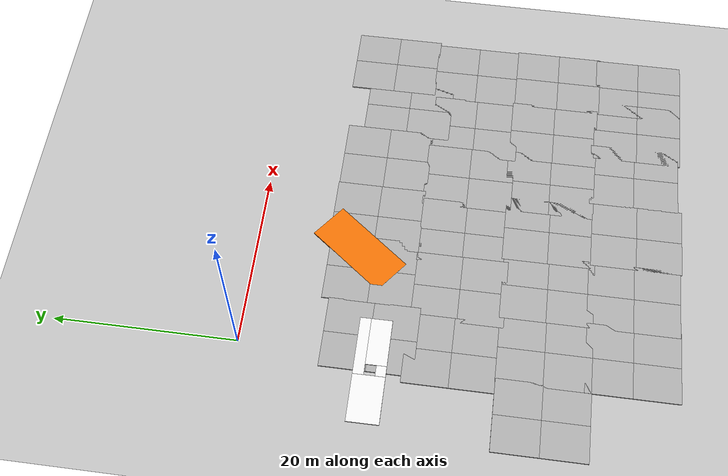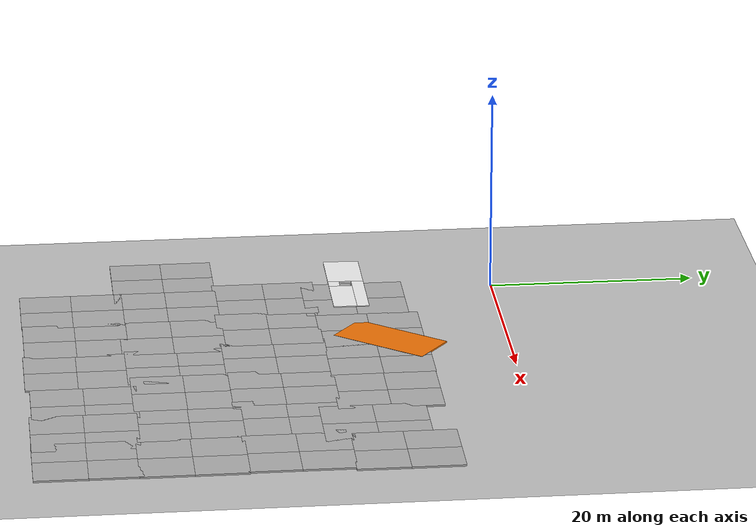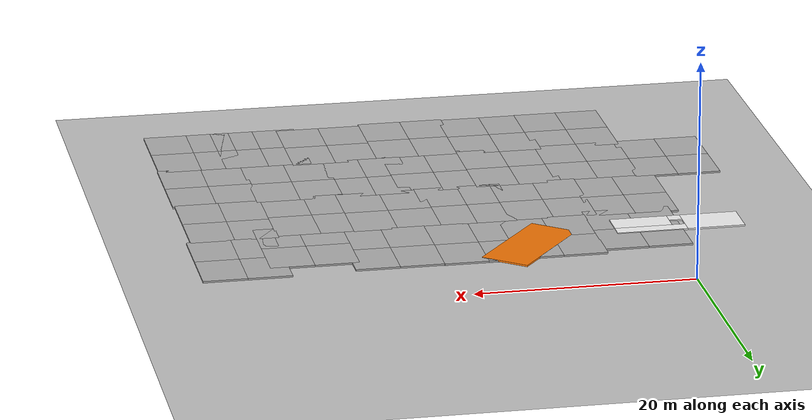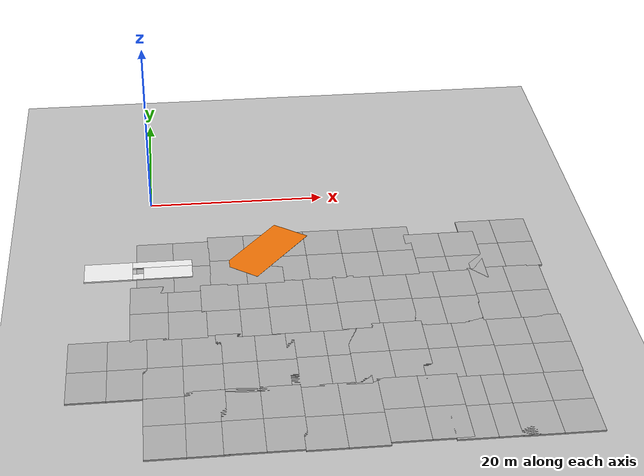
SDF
<sdf version="1.5">
 <world name="default">
  <model name="ground_plane">
   <static>1</static>
   <link name="link">
    <collision name="collision">
     <geometry><plane><normal>0 0 1</normal><size>100 100</size></plane></geometry>
     <surface><friction><ode><mu>100</mu><mu2>50</mu2></ode></friction></surface>
    </collision>
    <visual name="visual">
     <cast_shadows>0</cast_shadows>
     <geometry><plane><normal>0 0 1</normal><size>100 100</size></plane></geometry>
     <material>
      <script><uri>file://media/materials/scripts/gazebo.material</uri><name>Gazebo/Grey</name></script>
     </material>
    </visual>
   </link>
  </model>
  <model name="mud_box_6">
   <static>1</static>
   <link name="link">
    <collision name="collision"><geometry><box><size>8 10 0.2</size></box></geometry></collision>
    <visual name="visual_1">
     <pose>-2 2.5 0 0 -0 0</pose>
     <cast_shadows>0</cast_shadows>
     <geometry><box><size>4 5 0.2</size></box></geometry>
     <material>
      <script>
       <uri>model://mud_box/materials/scripts</uri>
       <uri>model://mud_box/materials/textures</uri>
       <name>vrc/mud</name>
      </script>
     </material>
    </visual>
    <visual name="visual_2">
     <pose>2 2.5 0 0 -0 0</pose>
     <cast_shadows>0</cast_shadows>
     <geometry><box><size>4 5 0.2</size></box></geometry>
     <material>
      <script>
       <uri>model://mud_box/materials/scripts</uri>
       <uri>model://mud_box/materials/textures</uri>
       <name>vrc/mud</name>
      </script>
     </material>
    </visual>
    <visual name="visual_3">
     <pose>2 -2.5 0 0 -0 0</pose>
     <cast_shadows>0</cast_shadows>
     <geometry><box><size>4 5 0.2</size></box></geometry>
     <material>
      <script>
       <uri>model://mud_box/materials/scripts</uri>
       <uri>model://mud_box/materials/textures</uri>
       <name>vrc/mud</name>
      </script>
     </material>
    </visual>
    <visual name="visual_4">
     <pose>-2 -2.5 0 0 -0 0</pose>
     <cast_shadows>0</cast_shadows>
     <geometry><box><size>4 5 0.2</size></box></geometry>
     <material>
      <script>
       <uri>model://mud_box/materials/scripts</uri>
       <uri>model://mud_box/materials/textures</uri>
       <name>vrc/mud</name>
      </script>
     </material>
    </visual>
   </link>
   <pose>10.2281 -13.0017 0 0 -0 0</pose>
  </model>
  <model name="mud_box_7">
   <static>1</static>
   <link name="link">
    <collision name="collision"><geometry><box><size>8 10 0.2</size></box></geometry></collision>
    <visual name="visual_1">
     <pose>-2 2.5 0 0 -0 0</pose>
     <cast_shadows>0</cast_shadows>
     <geometry><box><size>4 5 0.2</size></box></geometry>
     <material>
      <script>
       <uri>model://mud_box/materials/scripts</uri>
       <uri>model://mud_box/materials/textures</uri>
       <name>vrc/mud</name>
      </script>
     </material>
    </visual>
    <visual name="visual_2">
     <pose>2 2.5 0 0 -0 0</pose>
     <cast_shadows>0</cast_shadows>
     <geometry><box><size>4 5 0.2</size></box></geometry>
     <material>
      <script>
       <uri>model://mud_box/materials/scripts</uri>
       <uri>model://mud_box/materials/textures</uri>
       <name>vrc/mud</name>
      </script>
     </material>
    </visual>
    <visual name="visual_3">
     <pose>2 -2.5 0 0 -0 0</pose>
     <cast_shadows>0</cast_shadows>
     <geometry><box><size>4 5 0.2</size></box></geometry>
     <material>
      <script>
       <uri>model://mud_box/materials/scripts</uri>
       <uri>model://mud_box/materials/textures</uri>
       <name>vrc/mud</name>
      </script>
     </material>
    </visual>
    <visual name="visual_4">
     <pose>-2 -2.5 0 0 -0 0</pose>
     <cast_shadows>0</cast_shadows>
     <geometry><box><size>4 5 0.2</size></box></geometry>
     <material>
      <script>
       <uri>model://mud_box/materials/scripts</uri>
       <uri>model://mud_box/materials/textures</uri>
       <name>vrc/mud</name>
      </script>
     </material>
    </visual>
   </link>
   <pose>2.3022 -13.8279 0 0 -0 0</pose>
  </model>
  <model name="window2">
   <pose>-1.52133 -12.523 0.093793 1.55967 -0 0</pose>
   <link name="Wall_0">
    <visual name="Wall_0_Visual_0">
     <pose>-3.2425 0 1.75 0 -0 0</pose>
     <geometry><box><size>5.265 0.15 3.5</size></box></geometry>
     <material>
      <script>
       <uri>model://window_door/materials/scripts</uri>
       <uri>model://window_door/materials/textures</uri>
       <name>Wall/NiceWall</name>
      </script>
      <ambient>1 1 1 1</ambient>
     </material>
    </visual>
    <collision name="Wall_0_Collision_0">
     <geometry><box><size>5.265 0.15 3.5</size></box></geometry>
     <pose>-3.2425 0 1.75 0 -0 0</pose>
    </collision>
    <visual name="Wall_0_Visual_1">
     <pose>2.6325 0 0.6 0 -0 0</pose>
     <geometry><box><size>6.485 0.15 1.2</size></box></geometry>
     <material>
      <script>
       <uri>model://window_door/materials/scripts</uri>
       <uri>model://window_door/materials/textures</uri>
       <name>Wall/NiceWall</name>
      </script>
      <ambient>1 1 1 1</ambient>
     </material>
    </visual>
    <collision name="Wall_0_Collision_1">
     <geometry><box><size>6.485 0.15 1.2</size></box></geometry>
     <pose>2.6325 0 0.6 0 -0 0</pose>
    </collision>
    <visual name="Wall_0_Visual_2">
     <pose>3.2325 0 2.35 0 -0 0</pose>
     <geometry><box><size>5.285 0.15 2.3</size></box></geometry>
     <material>
      <script>
       <uri>model://window_door/materials/scripts</uri>
       <uri>model://window_door/materials/textures</uri>
       <name>Wall/NiceWall</name>
      </script>
      <ambient>1 1 1 1</ambient>
     </material>
    </visual>
    <collision name="Wall_0_Collision_2">
     <geometry><box><size>5.285 0.15 2.3</size></box></geometry>
     <pose>3.2325 0 2.35 0 -0 0</pose>
    </collision>
    <visual name="Wall_0_Visual_3">
     <pose>-0.01 0 2.95 0 -0 0</pose>
     <geometry><box><size>1.2 0.15 1.1</size></box></geometry>
     <material>
      <script>
       <uri>model://window_door/materials/scripts</uri>
       <uri>model://window_door/materials/textures</uri>
       <name>Wall/NiceWall</name>
      </script>
      <ambient>1 1 1 1</ambient>
     </material>
    </visual>
    <collision name="Wall_0_Collision_3">
     <geometry><box><size>1.2 0.15 1.1</size></box></geometry>
     <pose>-0.01 0 2.95 0 -0 0</pose>
    </collision>
   </link>
   <static>1</static>
  </model>
  <model name="wall_2">
   <pose>14.4557 -12.7036 0.049201 2.47818 -1.56676 -3.14083</pose>
   <link name="Wall_0">
    <collision name="Wall_0_Collision">
     <geometry><box><size>10 0.15 4.5</size></box></geometry>
     <pose>0 0 2.25 0 -0 0</pose>
    </collision>
    <visual name="Wall_0_Visual">
     <pose>0 0 2.25 0 -0 0</pose>
     <geometry><box><size>10 0.15 4.5</size></box></geometry>
     <material>
      <script>
       <uri>model://wall/materials/scripts</uri>
       <uri>model://wall/materials/textures</uri>
       <name>Wall/NiceWall</name>
      </script>
      <ambient>0.996078 0.47451 0.0196078 1</ambient>
     </material>
    </visual>
    <pose>0 -0 0 0 0 -1.5708</pose>
   </link>
   <static>1</static>
  </model>
  <model name="mud_box_19">
   <static>1</static>
   <link name="link">
    <collision name="collision"><geometry><box><size>8 10 0.2</size></box></geometry></collision>
    <visual name="visual_1">
     <pose>-2 2.5 0 0 -0 0</pose>
     <cast_shadows>0</cast_shadows>
     <geometry><box><size>4 5 0.2</size></box></geometry>
     <material>
      <script>
       <uri>model://mud_box/materials/scripts</uri>
       <uri>model://mud_box/materials/textures</uri>
       <name>vrc/mud</name>
      </script>
     </material>
    </visual>
    <visual name="visual_2">
     <pose>2 2.5 0 0 -0 0</pose>
     <cast_shadows>0</cast_shadows>
     <geometry><box><size>4 5 0.2</size></box></geometry>
     <material>
      <script>
       <uri>model://mud_box/materials/scripts</uri>
       <uri>model://mud_box/materials/textures</uri>
       <name>vrc/mud</name>
      </script>
     </material>
    </visual>
    <visual name="visual_3">
     <pose>2 -2.5 0 0 -0 0</pose>
     <cast_shadows>0</cast_shadows>
     <geometry><box><size>4 5 0.2</size></box></geometry>
     <material>
      <script>
       <uri>model://mud_box/materials/scripts</uri>
       <uri>model://mud_box/materials/textures</uri>
       <name>vrc/mud</name>
      </script>
     </material>
    </visual>
    <visual name="visual_4">
     <pose>-2 -2.5 0 0 -0 0</pose>
     <cast_shadows>0</cast_shadows>
     <geometry><box><size>4 5 0.2</size></box></geometry>
     <material>
      <script>
       <uri>model://mud_box/materials/scripts</uri>
       <uri>model://mud_box/materials/textures</uri>
       <name>vrc/mud</name>
      </script>
     </material>
    </visual>
   </link>
   <pose>17.056 -12.7839 0 0 -0 0</pose>
  </model>
  <model name="mud_box_33">
   <static>1</static>
   <link name="link">
    <collision name="collision"><geometry><box><size>8 10 0.2</size></box></geometry></collision>
    <visual name="visual_1">
     <pose>-2 2.5 0 0 -0 0</pose>
     <cast_shadows>0</cast_shadows>
     <geometry><box><size>4 5 0.2</size></box></geometry>
     <material>
      <script>
       <uri>model://mud_box/materials/scripts</uri>
       <uri>model://mud_box/materials/textures</uri>
       <name>vrc/mud</name>
      </script>
     </material>
    </visual>
    <visual name="visual_2">
     <pose>2 2.5 0 0 -0 0</pose>
     <cast_shadows>0</cast_shadows>
     <geometry><box><size>4 5 0.2</size></box></geometry>
     <material>
      <script>
       <uri>model://mud_box/materials/scripts</uri>
       <uri>model://mud_box/materials/textures</uri>
       <name>vrc/mud</name>
      </script>
     </material>
    </visual>
    <visual name="visual_3">
     <pose>2 -2.5 0 0 -0 0</pose>
     <cast_shadows>0</cast_shadows>
     <geometry><box><size>4 5 0.2</size></box></geometry>
     <material>
      <script>
       <uri>model://mud_box/materials/scripts</uri>
       <uri>model://mud_box/materials/textures</uri>
       <name>vrc/mud</name>
      </script>
     </material>
    </visual>
    <visual name="visual_4">
     <pose>-2 -2.5 0 0 -0 0</pose>
     <cast_shadows>0</cast_shadows>
     <geometry><box><size>4 5 0.2</size></box></geometry>
     <material>
      <script>
       <uri>model://mud_box/materials/scripts</uri>
       <uri>model://mud_box/materials/textures</uri>
       <name>vrc/mud</name>
      </script>
     </material>
    </visual>
   </link>
   <pose>25.0395 -12.8492 0 0 -0 0</pose>
  </model>
  <model name="mud_box_37">
   <static>1</static>
   <link name="link">
    <collision name="collision"><geometry><box><size>8 10 0.2</size></box></geometry></collision>
    <visual name="visual_1">
     <pose>-2 2.5 0 0 -0 0</pose>
     <cast_shadows>0</cast_shadows>
     <geometry><box><size>4 5 0.2</size></box></geometry>
     <material>
      <script>
       <uri>model://mud_box/materials/scripts</uri>
       <uri>model://mud_box/materials/textures</uri>
       <name>vrc/mud</name>
      </script>
     </material>
    </visual>
    <visual name="visual_2">
     <pose>2 2.5 0 0 -0 0</pose>
     <cast_shadows>0</cast_shadows>
     <geometry><box><size>4 5 0.2</size></box></geometry>
     <material>
      <script>
       <uri>model://mud_box/materials/scripts</uri>
       <uri>model://mud_box/materials/textures</uri>
       <name>vrc/mud</name>
      </script>
     </material>
    </visual>
    <visual name="visual_3">
     <pose>2 -2.5 0 0 -0 0</pose>
     <cast_shadows>0</cast_shadows>
     <geometry><box><size>4 5 0.2</size></box></geometry>
     <material>
      <script>
       <uri>model://mud_box/materials/scripts</uri>
       <uri>model://mud_box/materials/textures</uri>
       <name>vrc/mud</name>
      </script>
     </material>
    </visual>
    <visual name="visual_4">
     <pose>-2 -2.5 0 0 -0 0</pose>
     <cast_shadows>0</cast_shadows>
     <geometry><box><size>4 5 0.2</size></box></geometry>
     <material>
      <script>
       <uri>model://mud_box/materials/scripts</uri>
       <uri>model://mud_box/materials/textures</uri>
       <name>vrc/mud</name>
      </script>
     </material>
    </visual>
   </link>
   <pose>1.57421 -22.5801 0 0 -0 0</pose>
  </model>
  <model name="mud_box_38">
   <static>1</static>
   <link name="link">
    <collision name="collision"><geometry><box><size>8 10 0.2</size></box></geometry></collision>
    <visual name="visual_1">
     <pose>-2 2.5 0 0 -0 0</pose>
     <cast_shadows>0</cast_shadows>
     <geometry><box><size>4 5 0.2</size></box></geometry>
     <material>
      <script>
       <uri>model://mud_box/materials/scripts</uri>
       <uri>model://mud_box/materials/textures</uri>
       <name>vrc/mud</name>
      </script>
     </material>
    </visual>
    <visual name="visual_2">
     <pose>2 2.5 0 0 -0 0</pose>
     <cast_shadows>0</cast_shadows>
     <geometry><box><size>4 5 0.2</size></box></geometry>
     <material>
      <script>
       <uri>model://mud_box/materials/scripts</uri>
       <uri>model://mud_box/materials/textures</uri>
       <name>vrc/mud</name>
      </script>
     </material>
    </visual>
    <visual name="visual_3">
     <pose>2 -2.5 0 0 -0 0</pose>
     <cast_shadows>0</cast_shadows>
     <geometry><box><size>4 5 0.2</size></box></geometry>
     <material>
      <script>
       <uri>model://mud_box/materials/scripts</uri>
       <uri>model://mud_box/materials/textures</uri>
       <name>vrc/mud</name>
      </script>
     </material>
    </visual>
    <visual name="visual_4">
     <pose>-2 -2.5 0 0 -0 0</pose>
     <cast_shadows>0</cast_shadows>
     <geometry><box><size>4 5 0.2</size></box></geometry>
     <material>
      <script>
       <uri>model://mud_box/materials/scripts</uri>
       <uri>model://mud_box/materials/textures</uri>
       <name>vrc/mud</name>
      </script>
     </material>
    </visual>
   </link>
   <pose>9.09898 -22.7735 0 0 -0 0</pose>
  </model>
  <model name="mud_box_39">
   <static>1</static>
   <link name="link">
    <collision name="collision"><geometry><box><size>8 10 0.2</size></box></geometry></collision>
    <visual name="visual_1">
     <pose>-2 2.5 0 0 -0 0</pose>
     <cast_shadows>0</cast_shadows>
     <geometry><box><size>4 5 0.2</size></box></geometry>
     <material>
      <script>
       <uri>model://mud_box/materials/scripts</uri>
       <uri>model://mud_box/materials/textures</uri>
       <name>vrc/mud</name>
      </script>
     </material>
    </visual>
    <visual name="visual_2">
     <pose>2 2.5 0 0 -0 0</pose>
     <cast_shadows>0</cast_shadows>
     <geometry><box><size>4 5 0.2</size></box></geometry>
     <material>
      <script>
       <uri>model://mud_box/materials/scripts</uri>
       <uri>model://mud_box/materials/textures</uri>
       <name>vrc/mud</name>
      </script>
     </material>
    </visual>
    <visual name="visual_3">
     <pose>2 -2.5 0 0 -0 0</pose>
     <cast_shadows>0</cast_shadows>
     <geometry><box><size>4 5 0.2</size></box></geometry>
     <material>
      <script>
       <uri>model://mud_box/materials/scripts</uri>
       <uri>model://mud_box/materials/textures</uri>
       <name>vrc/mud</name>
      </script>
     </material>
    </visual>
    <visual name="visual_4">
     <pose>-2 -2.5 0 0 -0 0</pose>
     <cast_shadows>0</cast_shadows>
     <geometry><box><size>4 5 0.2</size></box></geometry>
     <material>
      <script>
       <uri>model://mud_box/materials/scripts</uri>
       <uri>model://mud_box/materials/textures</uri>
       <name>vrc/mud</name>
      </script>
     </material>
    </visual>
   </link>
   <pose>16.1595 -22.6727 0 0 -0 0</pose>
  </model>
  <model name="mud_box_40">
   <static>1</static>
   <link name="link">
    <collision name="collision"><geometry><box><size>8 10 0.2</size></box></geometry></collision>
    <visual name="visual_1">
     <pose>-2 2.5 0 0 -0 0</pose>
     <cast_shadows>0</cast_shadows>
     <geometry><box><size>4 5 0.2</size></box></geometry>
     <material>
      <script>
       <uri>model://mud_box/materials/scripts</uri>
       <uri>model://mud_box/materials/textures</uri>
       <name>vrc/mud</name>
      </script>
     </material>
    </visual>
    <visual name="visual_2">
     <pose>2 2.5 0 0 -0 0</pose>
     <cast_shadows>0</cast_shadows>
     <geometry><box><size>4 5 0.2</size></box></geometry>
     <material>
      <script>
       <uri>model://mud_box/materials/scripts</uri>
       <uri>model://mud_box/materials/textures</uri>
       <name>vrc/mud</name>
      </script>
     </material>
    </visual>
    <visual name="visual_3">
     <pose>2 -2.5 0 0 -0 0</pose>
     <cast_shadows>0</cast_shadows>
     <geometry><box><size>4 5 0.2</size></box></geometry>
     <material>
      <script>
       <uri>model://mud_box/materials/scripts</uri>
       <uri>model://mud_box/materials/textures</uri>
       <name>vrc/mud</name>
      </script>
     </material>
    </visual>
    <visual name="visual_4">
     <pose>-2 -2.5 0 0 -0 0</pose>
     <cast_shadows>0</cast_shadows>
     <geometry><box><size>4 5 0.2</size></box></geometry>
     <material>
      <script>
       <uri>model://mud_box/materials/scripts</uri>
       <uri>model://mud_box/materials/textures</uri>
       <name>vrc/mud</name>
      </script>
     </material>
    </visual>
   </link>
   <pose>23.4726 -22.525 0 0 -0 0</pose>
  </model>
  <model name="mud_box_50">
   <static>1</static>
   <link name="link">
    <collision name="collision"><geometry><box><size>8 10 0.2</size></box></geometry></collision>
    <visual name="visual_1">
     <pose>-2 2.5 0 0 -0 0</pose>
     <cast_shadows>0</cast_shadows>
     <geometry><box><size>4 5 0.2</size></box></geometry>
     <material>
      <script>
       <uri>model://mud_box/materials/scripts</uri>
       <uri>model://mud_box/materials/textures</uri>
       <name>vrc/mud</name>
      </script>
     </material>
    </visual>
    <visual name="visual_2">
     <pose>2 2.5 0 0 -0 0</pose>
     <cast_shadows>0</cast_shadows>
     <geometry><box><size>4 5 0.2</size></box></geometry>
     <material>
      <script>
       <uri>model://mud_box/materials/scripts</uri>
       <uri>model://mud_box/materials/textures</uri>
       <name>vrc/mud</name>
      </script>
     </material>
    </visual>
    <visual name="visual_3">
     <pose>2 -2.5 0 0 -0 0</pose>
     <cast_shadows>0</cast_shadows>
     <geometry><box><size>4 5 0.2</size></box></geometry>
     <material>
      <script>
       <uri>model://mud_box/materials/scripts</uri>
       <uri>model://mud_box/materials/textures</uri>
       <name>vrc/mud</name>
      </script>
     </material>
    </visual>
    <visual name="visual_4">
     <pose>-2 -2.5 0 0 -0 0</pose>
     <cast_shadows>0</cast_shadows>
     <geometry><box><size>4 5 0.2</size></box></geometry>
     <material>
      <script>
       <uri>model://mud_box/materials/scripts</uri>
       <uri>model://mud_box/materials/textures</uri>
       <name>vrc/mud</name>
      </script>
     </material>
    </visual>
   </link>
   <pose>-4.67582 -32.3434 0 0 -0 0</pose>
  </model>
  <model name="mud_box_51">
   <static>1</static>
   <link name="link">
    <collision name="collision"><geometry><box><size>8 10 0.2</size></box></geometry></collision>
    <visual name="visual_1">
     <pose>-2 2.5 0 0 -0 0</pose>
     <cast_shadows>0</cast_shadows>
     <geometry><box><size>4 5 0.2</size></box></geometry>
     <material>
      <script>
       <uri>model://mud_box/materials/scripts</uri>
       <uri>model://mud_box/materials/textures</uri>
       <name>vrc/mud</name>
      </script>
     </material>
    </visual>
    <visual name="visual_2">
     <pose>2 2.5 0 0 -0 0</pose>
     <cast_shadows>0</cast_shadows>
     <geometry><box><size>4 5 0.2</size></box></geometry>
     <material>
      <script>
       <uri>model://mud_box/materials/scripts</uri>
       <uri>model://mud_box/materials/textures</uri>
       <name>vrc/mud</name>
      </script>
     </material>
    </visual>
    <visual name="visual_3">
     <pose>2 -2.5 0 0 -0 0</pose>
     <cast_shadows>0</cast_shadows>
     <geometry><box><size>4 5 0.2</size></box></geometry>
     <material>
      <script>
       <uri>model://mud_box/materials/scripts</uri>
       <uri>model://mud_box/materials/textures</uri>
       <name>vrc/mud</name>
      </script>
     </material>
    </visual>
    <visual name="visual_4">
     <pose>-2 -2.5 0 0 -0 0</pose>
     <cast_shadows>0</cast_shadows>
     <geometry><box><size>4 5 0.2</size></box></geometry>
     <material>
      <script>
       <uri>model://mud_box/materials/scripts</uri>
       <uri>model://mud_box/materials/textures</uri>
       <name>vrc/mud</name>
      </script>
     </material>
    </visual>
   </link>
   <pose>2.87625 -32.3048 0 0 -0 0</pose>
  </model>
  <model name="mud_box_52">
   <static>1</static>
   <link name="link">
    <collision name="collision"><geometry><box><size>8 10 0.2</size></box></geometry></collision>
    <visual name="visual_1">
     <pose>-2 2.5 0 0 -0 0</pose>
     <cast_shadows>0</cast_shadows>
     <geometry><box><size>4 5 0.2</size></box></geometry>
     <material>
      <script>
       <uri>model://mud_box/materials/scripts</uri>
       <uri>model://mud_box/materials/textures</uri>
       <name>vrc/mud</name>
      </script>
     </material>
    </visual>
    <visual name="visual_2">
     <pose>2 2.5 0 0 -0 0</pose>
     <cast_shadows>0</cast_shadows>
     <geometry><box><size>4 5 0.2</size></box></geometry>
     <material>
      <script>
       <uri>model://mud_box/materials/scripts</uri>
       <uri>model://mud_box/materials/textures</uri>
       <name>vrc/mud</name>
      </script>
     </material>
    </visual>
    <visual name="visual_3">
     <pose>2 -2.5 0 0 -0 0</pose>
     <cast_shadows>0</cast_shadows>
     <geometry><box><size>4 5 0.2</size></box></geometry>
     <material>
      <script>
       <uri>model://mud_box/materials/scripts</uri>
       <uri>model://mud_box/materials/textures</uri>
       <name>vrc/mud</name>
      </script>
     </material>
    </visual>
    <visual name="visual_4">
     <pose>-2 -2.5 0 0 -0 0</pose>
     <cast_shadows>0</cast_shadows>
     <geometry><box><size>4 5 0.2</size></box></geometry>
     <material>
      <script>
       <uri>model://mud_box/materials/scripts</uri>
       <uri>model://mud_box/materials/textures</uri>
       <name>vrc/mud</name>
      </script>
     </material>
    </visual>
   </link>
   <pose>10.3168 -32.2126 0 0 -0 0</pose>
  </model>
  <model name="mud_box_53">
   <static>1</static>
   <link name="link">
    <collision name="collision"><geometry><box><size>8 10 0.2</size></box></geometry></collision>
    <visual name="visual_1">
     <pose>-2 2.5 0 0 -0 0</pose>
     <cast_shadows>0</cast_shadows>
     <geometry><box><size>4 5 0.2</size></box></geometry>
     <material>
      <script>
       <uri>model://mud_box/materials/scripts</uri>
       <uri>model://mud_box/materials/textures</uri>
       <name>vrc/mud</name>
      </script>
     </material>
    </visual>
    <visual name="visual_2">
     <pose>2 2.5 0 0 -0 0</pose>
     <cast_shadows>0</cast_shadows>
     <geometry><box><size>4 5 0.2</size></box></geometry>
     <material>
      <script>
       <uri>model://mud_box/materials/scripts</uri>
       <uri>model://mud_box/materials/textures</uri>
       <name>vrc/mud</name>
      </script>
     </material>
    </visual>
    <visual name="visual_3">
     <pose>2 -2.5 0 0 -0 0</pose>
     <cast_shadows>0</cast_shadows>
     <geometry><box><size>4 5 0.2</size></box></geometry>
     <material>
      <script>
       <uri>model://mud_box/materials/scripts</uri>
       <uri>model://mud_box/materials/textures</uri>
       <name>vrc/mud</name>
      </script>
     </material>
    </visual>
    <visual name="visual_4">
     <pose>-2 -2.5 0 0 -0 0</pose>
     <cast_shadows>0</cast_shadows>
     <geometry><box><size>4 5 0.2</size></box></geometry>
     <material>
      <script>
       <uri>model://mud_box/materials/scripts</uri>
       <uri>model://mud_box/materials/textures</uri>
       <name>vrc/mud</name>
      </script>
     </material>
    </visual>
   </link>
   <pose>17.4804 -32.0057 0 0 -0 0</pose>
  </model>
  <model name="mud_box_54">
   <static>1</static>
   <link name="link">
    <collision name="collision"><geometry><box><size>8 10 0.2</size></box></geometry></collision>
    <visual name="visual_1">
     <pose>-2 2.5 0 0 -0 0</pose>
     <cast_shadows>0</cast_shadows>
     <geometry><box><size>4 5 0.2</size></box></geometry>
     <material>
      <script>
       <uri>model://mud_box/materials/scripts</uri>
       <uri>model://mud_box/materials/textures</uri>
       <name>vrc/mud</name>
      </script>
     </material>
    </visual>
    <visual name="visual_2">
     <pose>2 2.5 0 0 -0 0</pose>
     <cast_shadows>0</cast_shadows>
     <geometry><box><size>4 5 0.2</size></box></geometry>
     <material>
      <script>
       <uri>model://mud_box/materials/scripts</uri>
       <uri>model://mud_box/materials/textures</uri>
       <name>vrc/mud</name>
      </script>
     </material>
    </visual>
    <visual name="visual_3">
     <pose>2 -2.5 0 0 -0 0</pose>
     <cast_shadows>0</cast_shadows>
     <geometry><box><size>4 5 0.2</size></box></geometry>
     <material>
      <script>
       <uri>model://mud_box/materials/scripts</uri>
       <uri>model://mud_box/materials/textures</uri>
       <name>vrc/mud</name>
      </script>
     </material>
    </visual>
    <visual name="visual_4">
     <pose>-2 -2.5 0 0 -0 0</pose>
     <cast_shadows>0</cast_shadows>
     <geometry><box><size>4 5 0.2</size></box></geometry>
     <material>
      <script>
       <uri>model://mud_box/materials/scripts</uri>
       <uri>model://mud_box/materials/textures</uri>
       <name>vrc/mud</name>
      </script>
     </material>
    </visual>
   </link>
   <pose>23.7825 -31.7911 0 0 -0 0</pose>
  </model>
  <model name="mud_box_68">
   <static>1</static>
   <link name="link">
    <collision name="collision"><geometry><box><size>8 10 0.2</size></box></geometry></collision>
    <visual name="visual_1">
     <pose>-2 2.5 0 0 -0 0</pose>
     <cast_shadows>0</cast_shadows>
     <geometry><box><size>4 5 0.2</size></box></geometry>
     <material>
      <script>
       <uri>model://mud_box/materials/scripts</uri>
       <uri>model://mud_box/materials/textures</uri>
       <name>vrc/mud</name>
      </script>
     </material>
    </visual>
    <visual name="visual_2">
     <pose>2 2.5 0 0 -0 0</pose>
     <cast_shadows>0</cast_shadows>
     <geometry><box><size>4 5 0.2</size></box></geometry>
     <material>
      <script>
       <uri>model://mud_box/materials/scripts</uri>
       <uri>model://mud_box/materials/textures</uri>
       <name>vrc/mud</name>
      </script>
     </material>
    </visual>
    <visual name="visual_3">
     <pose>2 -2.5 0 0 -0 0</pose>
     <cast_shadows>0</cast_shadows>
     <geometry><box><size>4 5 0.2</size></box></geometry>
     <material>
      <script>
       <uri>model://mud_box/materials/scripts</uri>
       <uri>model://mud_box/materials/textures</uri>
       <name>vrc/mud</name>
      </script>
     </material>
    </visual>
    <visual name="visual_4">
     <pose>-2 -2.5 0 0 -0 0</pose>
     <cast_shadows>0</cast_shadows>
     <geometry><box><size>4 5 0.2</size></box></geometry>
     <material>
      <script>
       <uri>model://mud_box/materials/scripts</uri>
       <uri>model://mud_box/materials/textures</uri>
       <name>vrc/mud</name>
      </script>
     </material>
    </visual>
   </link>
   <pose>32.3862 -14.6411 0 0 -0 0</pose>
  </model>
  <model name="mud_box_69">
   <static>1</static>
   <link name="link">
    <collision name="collision"><geometry><box><size>8 10 0.2</size></box></geometry></collision>
    <visual name="visual_1">
     <pose>-2 2.5 0 0 -0 0</pose>
     <cast_shadows>0</cast_shadows>
     <geometry><box><size>4 5 0.2</size></box></geometry>
     <material>
      <script>
       <uri>model://mud_box/materials/scripts</uri>
       <uri>model://mud_box/materials/textures</uri>
       <name>vrc/mud</name>
      </script>
     </material>
    </visual>
    <visual name="visual_2">
     <pose>2 2.5 0 0 -0 0</pose>
     <cast_shadows>0</cast_shadows>
     <geometry><box><size>4 5 0.2</size></box></geometry>
     <material>
      <script>
       <uri>model://mud_box/materials/scripts</uri>
       <uri>model://mud_box/materials/textures</uri>
       <name>vrc/mud</name>
      </script>
     </material>
    </visual>
    <visual name="visual_3">
     <pose>2 -2.5 0 0 -0 0</pose>
     <cast_shadows>0</cast_shadows>
     <geometry><box><size>4 5 0.2</size></box></geometry>
     <material>
      <script>
       <uri>model://mud_box/materials/scripts</uri>
       <uri>model://mud_box/materials/textures</uri>
       <name>vrc/mud</name>
      </script>
     </material>
    </visual>
    <visual name="visual_4">
     <pose>-2 -2.5 0 0 -0 0</pose>
     <cast_shadows>0</cast_shadows>
     <geometry><box><size>4 5 0.2</size></box></geometry>
     <material>
      <script>
       <uri>model://mud_box/materials/scripts</uri>
       <uri>model://mud_box/materials/textures</uri>
       <name>vrc/mud</name>
      </script>
     </material>
    </visual>
   </link>
   <pose>30.4846 -22.6187 0 0 -0 0</pose>
  </model>
  <model name="mud_box_70">
   <static>1</static>
   <link name="link">
    <collision name="collision"><geometry><box><size>8 10 0.2</size></box></geometry></collision>
    <visual name="visual_1">
     <pose>-2 2.5 0 0 -0 0</pose>
     <cast_shadows>0</cast_shadows>
     <geometry><box><size>4 5 0.2</size></box></geometry>
     <material>
      <script>
       <uri>model://mud_box/materials/scripts</uri>
       <uri>model://mud_box/materials/textures</uri>
       <name>vrc/mud</name>
      </script>
     </material>
    </visual>
    <visual name="visual_2">
     <pose>2 2.5 0 0 -0 0</pose>
     <cast_shadows>0</cast_shadows>
     <geometry><box><size>4 5 0.2</size></box></geometry>
     <material>
      <script>
       <uri>model://mud_box/materials/scripts</uri>
       <uri>model://mud_box/materials/textures</uri>
       <name>vrc/mud</name>
      </script>
     </material>
    </visual>
    <visual name="visual_3">
     <pose>2 -2.5 0 0 -0 0</pose>
     <cast_shadows>0</cast_shadows>
     <geometry><box><size>4 5 0.2</size></box></geometry>
     <material>
      <script>
       <uri>model://mud_box/materials/scripts</uri>
       <uri>model://mud_box/materials/textures</uri>
       <name>vrc/mud</name>
      </script>
     </material>
    </visual>
    <visual name="visual_4">
     <pose>-2 -2.5 0 0 -0 0</pose>
     <cast_shadows>0</cast_shadows>
     <geometry><box><size>4 5 0.2</size></box></geometry>
     <material>
      <script>
       <uri>model://mud_box/materials/scripts</uri>
       <uri>model://mud_box/materials/textures</uri>
       <name>vrc/mud</name>
      </script>
     </material>
    </visual>
   </link>
   <pose>30.7999 -31.8516 0 0 -0 0</pose>
  </model>
  <model name="mud_box_75">
   <static>1</static>
   <link name="link">
    <collision name="collision"><geometry><box><size>8 10 0.2</size></box></geometry></collision>
    <visual name="visual_1">
     <pose>-2 2.5 0 0 -0 0</pose>
     <cast_shadows>0</cast_shadows>
     <geometry><box><size>4 5 0.2</size></box></geometry>
     <material>
      <script>
       <uri>model://mud_box/materials/scripts</uri>
       <uri>model://mud_box/materials/textures</uri>
       <name>vrc/mud</name>
      </script>
     </material>
    </visual>
    <visual name="visual_2">
     <pose>2 2.5 0 0 -0 0</pose>
     <cast_shadows>0</cast_shadows>
     <geometry><box><size>4 5 0.2</size></box></geometry>
     <material>
      <script>
       <uri>model://mud_box/materials/scripts</uri>
       <uri>model://mud_box/materials/textures</uri>
       <name>vrc/mud</name>
      </script>
     </material>
    </visual>
    <visual name="visual_3">
     <pose>2 -2.5 0 0 -0 0</pose>
     <cast_shadows>0</cast_shadows>
     <geometry><box><size>4 5 0.2</size></box></geometry>
     <material>
      <script>
       <uri>model://mud_box/materials/scripts</uri>
       <uri>model://mud_box/materials/textures</uri>
       <name>vrc/mud</name>
      </script>
     </material>
    </visual>
    <visual name="visual_4">
     <pose>-2 -2.5 0 0 -0 0</pose>
     <cast_shadows>0</cast_shadows>
     <geometry><box><size>4 5 0.2</size></box></geometry>
     <material>
      <script>
       <uri>model://mud_box/materials/scripts</uri>
       <uri>model://mud_box/materials/textures</uri>
       <name>vrc/mud</name>
      </script>
     </material>
    </visual>
   </link>
   <pose>2.88113 -41.5718 0 0 -0 0</pose>
  </model>
  <model name="mud_box_76">
   <static>1</static>
   <link name="link">
    <collision name="collision"><geometry><box><size>8 10 0.2</size></box></geometry></collision>
    <visual name="visual_1">
     <pose>-2 2.5 0 0 -0 0</pose>
     <cast_shadows>0</cast_shadows>
     <geometry><box><size>4 5 0.2</size></box></geometry>
     <material>
      <script>
       <uri>model://mud_box/materials/scripts</uri>
       <uri>model://mud_box/materials/textures</uri>
       <name>vrc/mud</name>
      </script>
     </material>
    </visual>
    <visual name="visual_2">
     <pose>2 2.5 0 0 -0 0</pose>
     <cast_shadows>0</cast_shadows>
     <geometry><box><size>4 5 0.2</size></box></geometry>
     <material>
      <script>
       <uri>model://mud_box/materials/scripts</uri>
       <uri>model://mud_box/materials/textures</uri>
       <name>vrc/mud</name>
      </script>
     </material>
    </visual>
    <visual name="visual_3">
     <pose>2 -2.5 0 0 -0 0</pose>
     <cast_shadows>0</cast_shadows>
     <geometry><box><size>4 5 0.2</size></box></geometry>
     <material>
      <script>
       <uri>model://mud_box/materials/scripts</uri>
       <uri>model://mud_box/materials/textures</uri>
       <name>vrc/mud</name>
      </script>
     </material>
    </visual>
    <visual name="visual_4">
     <pose>-2 -2.5 0 0 -0 0</pose>
     <cast_shadows>0</cast_shadows>
     <geometry><box><size>4 5 0.2</size></box></geometry>
     <material>
      <script>
       <uri>model://mud_box/materials/scripts</uri>
       <uri>model://mud_box/materials/textures</uri>
       <name>vrc/mud</name>
      </script>
     </material>
    </visual>
   </link>
   <pose>10.3122 -41.521 0 0 -0 0</pose>
  </model>
  <model name="mud_box_77">
   <static>1</static>
   <link name="link">
    <collision name="collision"><geometry><box><size>8 10 0.2</size></box></geometry></collision>
    <visual name="visual_1">
     <pose>-2 2.5 0 0 -0 0</pose>
     <cast_shadows>0</cast_shadows>
     <geometry><box><size>4 5 0.2</size></box></geometry>
     <material>
      <script>
       <uri>model://mud_box/materials/scripts</uri>
       <uri>model://mud_box/materials/textures</uri>
       <name>vrc/mud</name>
      </script>
     </material>
    </visual>
    <visual name="visual_2">
     <pose>2 2.5 0 0 -0 0</pose>
     <cast_shadows>0</cast_shadows>
     <geometry><box><size>4 5 0.2</size></box></geometry>
     <material>
      <script>
       <uri>model://mud_box/materials/scripts</uri>
       <uri>model://mud_box/materials/textures</uri>
       <name>vrc/mud</name>
      </script>
     </material>
    </visual>
    <visual name="visual_3">
     <pose>2 -2.5 0 0 -0 0</pose>
     <cast_shadows>0</cast_shadows>
     <geometry><box><size>4 5 0.2</size></box></geometry>
     <material>
      <script>
       <uri>model://mud_box/materials/scripts</uri>
       <uri>model://mud_box/materials/textures</uri>
       <name>vrc/mud</name>
      </script>
     </material>
    </visual>
    <visual name="visual_4">
     <pose>-2 -2.5 0 0 -0 0</pose>
     <cast_shadows>0</cast_shadows>
     <geometry><box><size>4 5 0.2</size></box></geometry>
     <material>
      <script>
       <uri>model://mud_box/materials/scripts</uri>
       <uri>model://mud_box/materials/textures</uri>
       <name>vrc/mud</name>
      </script>
     </material>
    </visual>
   </link>
   <pose>17.9506 -41.7023 0 0 -0 0</pose>
  </model>
  <model name="mud_box_78">
   <static>1</static>
   <link name="link">
    <collision name="collision"><geometry><box><size>8 10 0.2</size></box></geometry></collision>
    <visual name="visual_1">
     <pose>-2 2.5 0 0 -0 0</pose>
     <cast_shadows>0</cast_shadows>
     <geometry><box><size>4 5 0.2</size></box></geometry>
     <material>
      <script>
       <uri>model://mud_box/materials/scripts</uri>
       <uri>model://mud_box/materials/textures</uri>
       <name>vrc/mud</name>
      </script>
     </material>
    </visual>
    <visual name="visual_2">
     <pose>2 2.5 0 0 -0 0</pose>
     <cast_shadows>0</cast_shadows>
     <geometry><box><size>4 5 0.2</size></box></geometry>
     <material>
      <script>
       <uri>model://mud_box/materials/scripts</uri>
       <uri>model://mud_box/materials/textures</uri>
       <name>vrc/mud</name>
      </script>
     </material>
    </visual>
    <visual name="visual_3">
     <pose>2 -2.5 0 0 -0 0</pose>
     <cast_shadows>0</cast_shadows>
     <geometry><box><size>4 5 0.2</size></box></geometry>
     <material>
      <script>
       <uri>model://mud_box/materials/scripts</uri>
       <uri>model://mud_box/materials/textures</uri>
       <name>vrc/mud</name>
      </script>
     </material>
    </visual>
    <visual name="visual_4">
     <pose>-2 -2.5 0 0 -0 0</pose>
     <cast_shadows>0</cast_shadows>
     <geometry><box><size>4 5 0.2</size></box></geometry>
     <material>
      <script>
       <uri>model://mud_box/materials/scripts</uri>
       <uri>model://mud_box/materials/textures</uri>
       <name>vrc/mud</name>
      </script>
     </material>
    </visual>
   </link>
   <pose>25.8857 -41.2984 0 0 -0 0</pose>
  </model>
  <model name="mud_box_79">
   <static>1</static>
   <link name="link">
    <collision name="collision"><geometry><box><size>8 10 0.2</size></box></geometry></collision>
    <visual name="visual_1">
     <pose>-2 2.5 0 0 -0 0</pose>
     <cast_shadows>0</cast_shadows>
     <geometry><box><size>4 5 0.2</size></box></geometry>
     <material>
      <script>
       <uri>model://mud_box/materials/scripts</uri>
       <uri>model://mud_box/materials/textures</uri>
       <name>vrc/mud</name>
      </script>
     </material>
    </visual>
    <visual name="visual_2">
     <pose>2 2.5 0 0 -0 0</pose>
     <cast_shadows>0</cast_shadows>
     <geometry><box><size>4 5 0.2</size></box></geometry>
     <material>
      <script>
       <uri>model://mud_box/materials/scripts</uri>
       <uri>model://mud_box/materials/textures</uri>
       <name>vrc/mud</name>
      </script>
     </material>
    </visual>
    <visual name="visual_3">
     <pose>2 -2.5 0 0 -0 0</pose>
     <cast_shadows>0</cast_shadows>
     <geometry><box><size>4 5 0.2</size></box></geometry>
     <material>
      <script>
       <uri>model://mud_box/materials/scripts</uri>
       <uri>model://mud_box/materials/textures</uri>
       <name>vrc/mud</name>
      </script>
     </material>
    </visual>
    <visual name="visual_4">
     <pose>-2 -2.5 0 0 -0 0</pose>
     <cast_shadows>0</cast_shadows>
     <geometry><box><size>4 5 0.2</size></box></geometry>
     <material>
      <script>
       <uri>model://mud_box/materials/scripts</uri>
       <uri>model://mud_box/materials/textures</uri>
       <name>vrc/mud</name>
      </script>
     </material>
    </visual>
   </link>
   <pose>32.1451 -41.5522 0 0 -0 0</pose>
  </model>
  <model name="mud_box_80">
   <static>1</static>
   <link name="link">
    <collision name="collision"><geometry><box><size>8 10 0.2</size></box></geometry></collision>
    <visual name="visual_1">
     <pose>-2 2.5 0 0 -0 0</pose>
     <cast_shadows>0</cast_shadows>
     <geometry><box><size>4 5 0.2</size></box></geometry>
     <material>
      <script>
       <uri>model://mud_box/materials/scripts</uri>
       <uri>model://mud_box/materials/textures</uri>
       <name>vrc/mud</name>
      </script>
     </material>
    </visual>
    <visual name="visual_2">
     <pose>2 2.5 0 0 -0 0</pose>
     <cast_shadows>0</cast_shadows>
     <geometry><box><size>4 5 0.2</size></box></geometry>
     <material>
      <script>
       <uri>model://mud_box/materials/scripts</uri>
       <uri>model://mud_box/materials/textures</uri>
       <name>vrc/mud</name>
      </script>
     </material>
    </visual>
    <visual name="visual_3">
     <pose>2 -2.5 0 0 -0 0</pose>
     <cast_shadows>0</cast_shadows>
     <geometry><box><size>4 5 0.2</size></box></geometry>
     <material>
      <script>
       <uri>model://mud_box/materials/scripts</uri>
       <uri>model://mud_box/materials/textures</uri>
       <name>vrc/mud</name>
      </script>
     </material>
    </visual>
    <visual name="visual_4">
     <pose>-2 -2.5 0 0 -0 0</pose>
     <cast_shadows>0</cast_shadows>
     <geometry><box><size>4 5 0.2</size></box></geometry>
     <material>
      <script>
       <uri>model://mud_box/materials/scripts</uri>
       <uri>model://mud_box/materials/textures</uri>
       <name>vrc/mud</name>
      </script>
     </material>
    </visual>
   </link>
   <pose>38.4419 -41.5947 0 0 -0 0</pose>
  </model>
  <model name="mud_box_81">
   <static>1</static>
   <link name="link">
    <collision name="collision"><geometry><box><size>8 10 0.2</size></box></geometry></collision>
    <visual name="visual_1">
     <pose>-2 2.5 0 0 -0 0</pose>
     <cast_shadows>0</cast_shadows>
     <geometry><box><size>4 5 0.2</size></box></geometry>
     <material>
      <script>
       <uri>model://mud_box/materials/scripts</uri>
       <uri>model://mud_box/materials/textures</uri>
       <name>vrc/mud</name>
      </script>
     </material>
    </visual>
    <visual name="visual_2">
     <pose>2 2.5 0 0 -0 0</pose>
     <cast_shadows>0</cast_shadows>
     <geometry><box><size>4 5 0.2</size></box></geometry>
     <material>
      <script>
       <uri>model://mud_box/materials/scripts</uri>
       <uri>model://mud_box/materials/textures</uri>
       <name>vrc/mud</name>
      </script>
     </material>
    </visual>
    <visual name="visual_3">
     <pose>2 -2.5 0 0 -0 0</pose>
     <cast_shadows>0</cast_shadows>
     <geometry><box><size>4 5 0.2</size></box></geometry>
     <material>
      <script>
       <uri>model://mud_box/materials/scripts</uri>
       <uri>model://mud_box/materials/textures</uri>
       <name>vrc/mud</name>
      </script>
     </material>
    </visual>
    <visual name="visual_4">
     <pose>-2 -2.5 0 0 -0 0</pose>
     <cast_shadows>0</cast_shadows>
     <geometry><box><size>4 5 0.2</size></box></geometry>
     <material>
      <script>
       <uri>model://mud_box/materials/scripts</uri>
       <uri>model://mud_box/materials/textures</uri>
       <name>vrc/mud</name>
      </script>
     </material>
    </visual>
   </link>
   <pose>38.5246 -32.0162 0 0 -0 0</pose>
  </model>
  <model name="mud_box_82">
   <static>1</static>
   <link name="link">
    <collision name="collision"><geometry><box><size>8 10 0.2</size></box></geometry></collision>
    <visual name="visual_1">
     <pose>-2 2.5 0 0 -0 0</pose>
     <cast_shadows>0</cast_shadows>
     <geometry><box><size>4 5 0.2</size></box></geometry>
     <material>
      <script>
       <uri>model://mud_box/materials/scripts</uri>
       <uri>model://mud_box/materials/textures</uri>
       <name>vrc/mud</name>
      </script>
     </material>
    </visual>
    <visual name="visual_2">
     <pose>2 2.5 0 0 -0 0</pose>
     <cast_shadows>0</cast_shadows>
     <geometry><box><size>4 5 0.2</size></box></geometry>
     <material>
      <script>
       <uri>model://mud_box/materials/scripts</uri>
       <uri>model://mud_box/materials/textures</uri>
       <name>vrc/mud</name>
      </script>
     </material>
    </visual>
    <visual name="visual_3">
     <pose>2 -2.5 0 0 -0 0</pose>
     <cast_shadows>0</cast_shadows>
     <geometry><box><size>4 5 0.2</size></box></geometry>
     <material>
      <script>
       <uri>model://mud_box/materials/scripts</uri>
       <uri>model://mud_box/materials/textures</uri>
       <name>vrc/mud</name>
      </script>
     </material>
    </visual>
    <visual name="visual_4">
     <pose>-2 -2.5 0 0 -0 0</pose>
     <cast_shadows>0</cast_shadows>
     <geometry><box><size>4 5 0.2</size></box></geometry>
     <material>
      <script>
       <uri>model://mud_box/materials/scripts</uri>
       <uri>model://mud_box/materials/textures</uri>
       <name>vrc/mud</name>
      </script>
     </material>
    </visual>
   </link>
   <pose>38.3467 -22.2935 0 0 -0 0</pose>
  </model>
  <model name="mud_box_83">
   <static>1</static>
   <link name="link">
    <collision name="collision"><geometry><box><size>8 10 0.2</size></box></geometry></collision>
    <visual name="visual_1">
     <pose>-2 2.5 0 0 -0 0</pose>
     <cast_shadows>0</cast_shadows>
     <geometry><box><size>4 5 0.2</size></box></geometry>
     <material>
      <script>
       <uri>model://mud_box/materials/scripts</uri>
       <uri>model://mud_box/materials/textures</uri>
       <name>vrc/mud</name>
      </script>
     </material>
    </visual>
    <visual name="visual_2">
     <pose>2 2.5 0 0 -0 0</pose>
     <cast_shadows>0</cast_shadows>
     <geometry><box><size>4 5 0.2</size></box></geometry>
     <material>
      <script>
       <uri>model://mud_box/materials/scripts</uri>
       <uri>model://mud_box/materials/textures</uri>
       <name>vrc/mud</name>
      </script>
     </material>
    </visual>
    <visual name="visual_3">
     <pose>2 -2.5 0 0 -0 0</pose>
     <cast_shadows>0</cast_shadows>
     <geometry><box><size>4 5 0.2</size></box></geometry>
     <material>
      <script>
       <uri>model://mud_box/materials/scripts</uri>
       <uri>model://mud_box/materials/textures</uri>
       <name>vrc/mud</name>
      </script>
     </material>
    </visual>
    <visual name="visual_4">
     <pose>-2 -2.5 0 0 -0 0</pose>
     <cast_shadows>0</cast_shadows>
     <geometry><box><size>4 5 0.2</size></box></geometry>
     <material>
      <script>
       <uri>model://mud_box/materials/scripts</uri>
       <uri>model://mud_box/materials/textures</uri>
       <name>vrc/mud</name>
      </script>
     </material>
    </visual>
   </link>
   <pose>38.7278 -12.4392 0 0 -0 0</pose>
  </model>
 </world>
</sdf>
